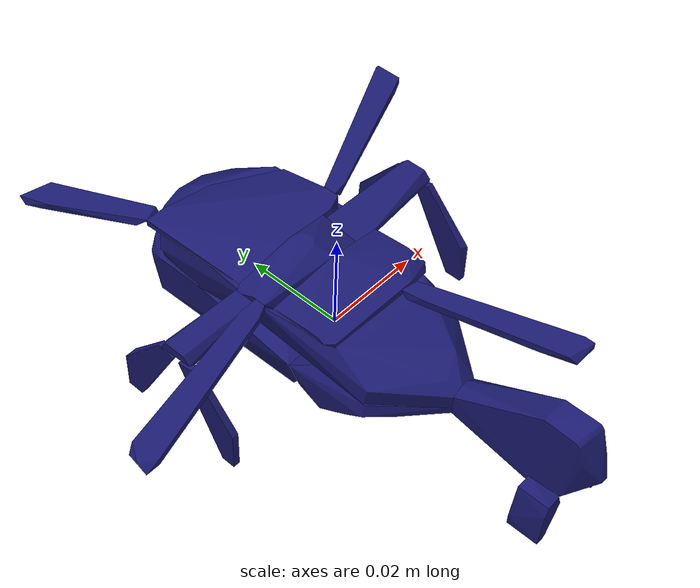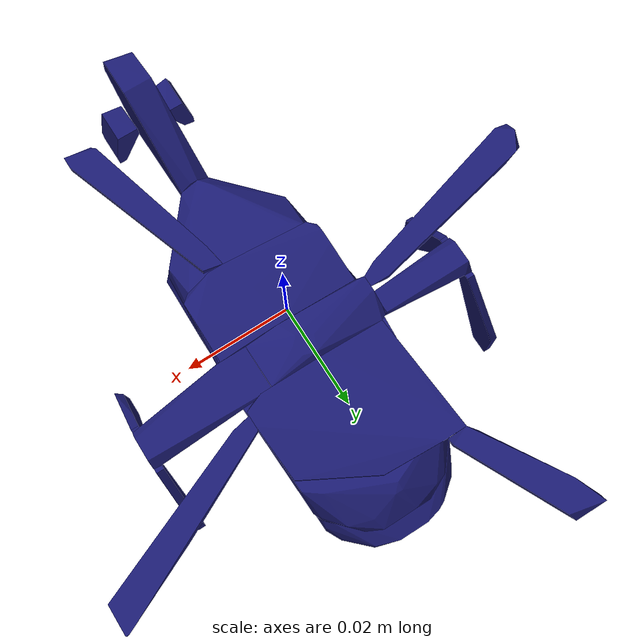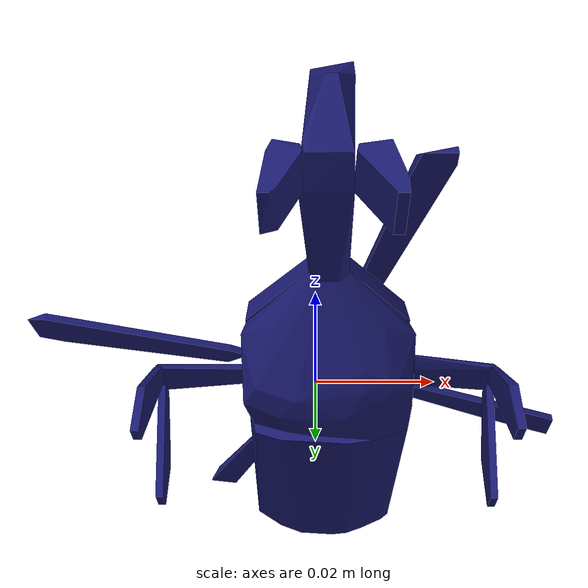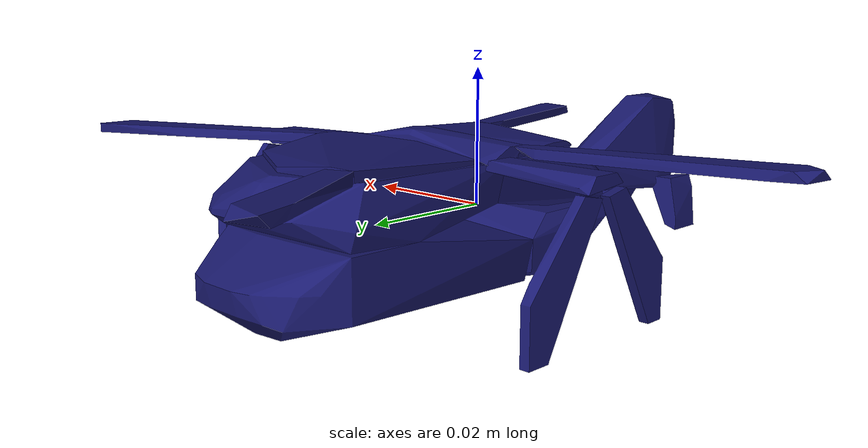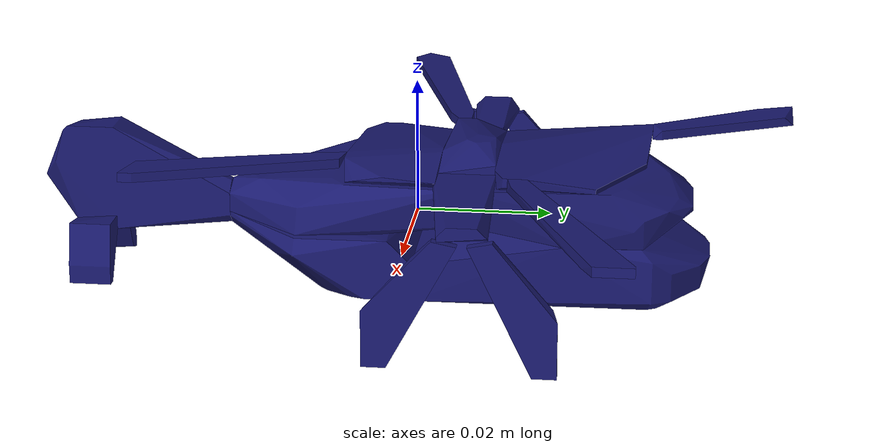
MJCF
<mujoco model="shapenetsem30">
  <asset>
    <mesh file="meshes/shapenetsem30/shapenetsem30_0.stl" name="shapenetsem30_0" scale="0.6 0.6 0.6"/>
    <mesh file="meshes/shapenetsem30/shapenetsem30_1.stl" name="shapenetsem30_1" scale="0.6 0.6 0.6"/>
    <mesh file="meshes/shapenetsem30/shapenetsem30_2.stl" name="shapenetsem30_2" scale="0.6 0.6 0.6"/>
    <mesh file="meshes/shapenetsem30/shapenetsem30_3.stl" name="shapenetsem30_3" scale="0.6 0.6 0.6"/>
    <mesh file="meshes/shapenetsem30/shapenetsem30_4.stl" name="shapenetsem30_4" scale="0.6 0.6 0.6"/>
    <mesh file="meshes/shapenetsem30/shapenetsem30_5.stl" name="shapenetsem30_5" scale="0.6 0.6 0.6"/>
    <mesh file="meshes/shapenetsem30/shapenetsem30_6.stl" name="shapenetsem30_6" scale="0.6 0.6 0.6"/>
    <mesh file="meshes/shapenetsem30/shapenetsem30_7.stl" name="shapenetsem30_7" scale="0.6 0.6 0.6"/>
    <mesh file="meshes/shapenetsem30/shapenetsem30_8.stl" name="shapenetsem30_8" scale="0.6 0.6 0.6"/>
    <mesh file="meshes/shapenetsem30/shapenetsem30_9.stl" name="shapenetsem30_9" scale="0.6 0.6 0.6"/>
    <mesh file="meshes/shapenetsem30/shapenetsem30_10.stl" name="shapenetsem30_10" scale="0.6 0.6 0.6"/>
    <mesh file="meshes/shapenetsem30/shapenetsem30_11.stl" name="shapenetsem30_11" scale="0.6 0.6 0.6"/>
    <mesh file="meshes/shapenetsem30/shapenetsem30_12.stl" name="shapenetsem30_12" scale="0.6 0.6 0.6"/>
    <mesh file="meshes/shapenetsem30/shapenetsem30_13.stl" name="shapenetsem30_13" scale="0.6 0.6 0.6"/>
    <mesh file="meshes/shapenetsem30/shapenetsem30_14.stl" name="shapenetsem30_14" scale="0.6 0.6 0.6"/>
    <mesh file="meshes/shapenetsem30/shapenetsem30_15.stl" name="shapenetsem30_15" scale="0.6 0.6 0.6"/>
    <mesh file="meshes/shapenetsem30/shapenetsem30_16.stl" name="shapenetsem30_16" scale="0.6 0.6 0.6"/>
    <mesh file="meshes/shapenetsem30/shapenetsem30_17.stl" name="shapenetsem30_17" scale="0.6 0.6 0.6"/>
    <mesh file="meshes/shapenetsem30/shapenetsem30_18.stl" name="shapenetsem30_18" scale="0.6 0.6 0.6"/>
    <mesh file="meshes/shapenetsem30/shapenetsem30_19.stl" name="shapenetsem30_19" scale="0.6 0.6 0.6"/>
    <texture file="../textures/texture31-1.png" type="2d" name="tex-sem30"/>
    <material name="sem30" reflectance="0.7" texrepeat="90 90" texture="tex-sem30" texuniform="true"/>
  </asset>
  <worldbody>
    <body>
      <body name="collision">
        <geom pos="0 0 0" mesh="shapenetsem30_0" type="mesh" solimp="0.998 0.998 0.001" solref="0.001 1" density="100" friction="0.95 0.3 0.1" rgba="0.1 0.1 0.44 1" group="1" condim="4"/>
        <geom pos="0 0 0" mesh="shapenetsem30_1" type="mesh" solimp="0.998 0.998 0.001" solref="0.001 1" density="100" friction="0.95 0.3 0.1" rgba="0.1 0.1 0.44 1" group="1" condim="4"/>
        <geom pos="0 0 0" mesh="shapenetsem30_2" type="mesh" solimp="0.998 0.998 0.001" solref="0.001 1" density="100" friction="0.95 0.3 0.1" rgba="0.1 0.1 0.44 1" group="1" condim="4"/>
        <geom pos="0 0 0" mesh="shapenetsem30_3" type="mesh" solimp="0.998 0.998 0.001" solref="0.001 1" density="100" friction="0.95 0.3 0.1" rgba="0.1 0.1 0.44 1" group="1" condim="4"/>
        <geom pos="0 0 0" mesh="shapenetsem30_4" type="mesh" solimp="0.998 0.998 0.001" solref="0.001 1" density="100" friction="0.95 0.3 0.1" rgba="0.1 0.1 0.44 1" group="1" condim="4"/>
        <geom pos="0 0 0" mesh="shapenetsem30_5" type="mesh" solimp="0.998 0.998 0.001" solref="0.001 1" density="100" friction="0.95 0.3 0.1" rgba="0.1 0.1 0.44 1" group="1" condim="4"/>
        <geom pos="0 0 0" mesh="shapenetsem30_6" type="mesh" solimp="0.998 0.998 0.001" solref="0.001 1" density="100" friction="0.95 0.3 0.1" rgba="0.1 0.1 0.44 1" group="1" condim="4"/>
        <geom pos="0 0 0" mesh="shapenetsem30_7" type="mesh" solimp="0.998 0.998 0.001" solref="0.001 1" density="100" friction="0.95 0.3 0.1" rgba="0.1 0.1 0.44 1" group="1" condim="4"/>
        <geom pos="0 0 0" mesh="shapenetsem30_8" type="mesh" solimp="0.998 0.998 0.001" solref="0.001 1" density="100" friction="0.95 0.3 0.1" rgba="0.1 0.1 0.44 1" group="1" condim="4"/>
        <geom pos="0 0 0" mesh="shapenetsem30_9" type="mesh" solimp="0.998 0.998 0.001" solref="0.001 1" density="100" friction="0.95 0.3 0.1" rgba="0.1 0.1 0.44 1" group="1" condim="4"/>
        <geom pos="0 0 0" mesh="shapenetsem30_10" type="mesh" solimp="0.998 0.998 0.001" solref="0.001 1" density="100" friction="0.95 0.3 0.1" rgba="0.1 0.1 0.44 1" group="1" condim="4"/>
        <geom pos="0 0 0" mesh="shapenetsem30_11" type="mesh" solimp="0.998 0.998 0.001" solref="0.001 1" density="100" friction="0.95 0.3 0.1" rgba="0.1 0.1 0.44 1" group="1" condim="4"/>
        <geom pos="0 0 0" mesh="shapenetsem30_12" type="mesh" solimp="0.998 0.998 0.001" solref="0.001 1" density="100" friction="0.95 0.3 0.1" rgba="0.1 0.1 0.44 1" group="1" condim="4"/>
        <geom pos="0 0 0" mesh="shapenetsem30_13" type="mesh" solimp="0.998 0.998 0.001" solref="0.001 1" density="100" friction="0.95 0.3 0.1" rgba="0.1 0.1 0.44 1" group="1" condim="4"/>
        <geom pos="0 0 0" mesh="shapenetsem30_14" type="mesh" solimp="0.998 0.998 0.001" solref="0.001 1" density="100" friction="0.95 0.3 0.1" rgba="0.1 0.1 0.44 1" group="1" condim="4"/>
        <geom pos="0 0 0" mesh="shapenetsem30_15" type="mesh" solimp="0.998 0.998 0.001" solref="0.001 1" density="100" friction="0.95 0.3 0.1" rgba="0.1 0.1 0.44 1" group="1" condim="4"/>
        <geom pos="0 0 0" mesh="shapenetsem30_16" type="mesh" solimp="0.998 0.998 0.001" solref="0.001 1" density="100" friction="0.95 0.3 0.1" rgba="0.1 0.1 0.44 1" group="1" condim="4"/>
        <geom pos="0 0 0" mesh="shapenetsem30_17" type="mesh" solimp="0.998 0.998 0.001" solref="0.001 1" density="100" friction="0.95 0.3 0.1" rgba="0.1 0.1 0.44 1" group="1" condim="4"/>
        <geom pos="0 0 0" mesh="shapenetsem30_18" type="mesh" solimp="0.998 0.998 0.001" solref="0.001 1" density="100" friction="0.95 0.3 0.1" rgba="0.1 0.1 0.44 1" group="1" condim="4"/>
        <geom pos="0 0 0" mesh="shapenetsem30_19" type="mesh" solimp="0.998 0.998 0.001" solref="0.001 1" density="100" friction="0.95 0.3 0.1" rgba="0.1 0.1 0.44 1" group="1" condim="4"/>
      </body>
      <body name="visual">
        <geom pos="0 0 0" mesh="shapenetsem30_0" type="mesh" material="sem30" conaffinity="0" contype="0" group="0" mass="0.0001"/>
        <geom pos="0 0 0" mesh="shapenetsem30_1" type="mesh" material="sem30" conaffinity="0" contype="0" group="0" mass="0.0001"/>
        <geom pos="0 0 0" mesh="shapenetsem30_2" type="mesh" material="sem30" conaffinity="0" contype="0" group="0" mass="0.0001"/>
        <geom pos="0 0 0" mesh="shapenetsem30_3" type="mesh" material="sem30" conaffinity="0" contype="0" group="0" mass="0.0001"/>
        <geom pos="0 0 0" mesh="shapenetsem30_4" type="mesh" material="sem30" conaffinity="0" contype="0" group="0" mass="0.0001"/>
        <geom pos="0 0 0" mesh="shapenetsem30_5" type="mesh" material="sem30" conaffinity="0" contype="0" group="0" mass="0.0001"/>
        <geom pos="0 0 0" mesh="shapenetsem30_6" type="mesh" material="sem30" conaffinity="0" contype="0" group="0" mass="0.0001"/>
        <geom pos="0 0 0" mesh="shapenetsem30_7" type="mesh" material="sem30" conaffinity="0" contype="0" group="0" mass="0.0001"/>
        <geom pos="0 0 0" mesh="shapenetsem30_8" type="mesh" material="sem30" conaffinity="0" contype="0" group="0" mass="0.0001"/>
        <geom pos="0 0 0" mesh="shapenetsem30_9" type="mesh" material="sem30" conaffinity="0" contype="0" group="0" mass="0.0001"/>
        <geom pos="0 0 0" mesh="shapenetsem30_10" type="mesh" material="sem30" conaffinity="0" contype="0" group="0" mass="0.0001"/>
        <geom pos="0 0 0" mesh="shapenetsem30_11" type="mesh" material="sem30" conaffinity="0" contype="0" group="0" mass="0.0001"/>
        <geom pos="0 0 0" mesh="shapenetsem30_12" type="mesh" material="sem30" conaffinity="0" contype="0" group="0" mass="0.0001"/>
        <geom pos="0 0 0" mesh="shapenetsem30_13" type="mesh" material="sem30" conaffinity="0" contype="0" group="0" mass="0.0001"/>
        <geom pos="0 0 0" mesh="shapenetsem30_14" type="mesh" material="sem30" conaffinity="0" contype="0" group="0" mass="0.0001"/>
        <geom pos="0 0 0" mesh="shapenetsem30_15" type="mesh" material="sem30" conaffinity="0" contype="0" group="0" mass="0.0001"/>
        <geom pos="0 0 0" mesh="shapenetsem30_16" type="mesh" material="sem30" conaffinity="0" contype="0" group="0" mass="0.0001"/>
        <geom pos="0 0 0" mesh="shapenetsem30_17" type="mesh" material="sem30" conaffinity="0" contype="0" group="0" mass="0.0001"/>
        <geom pos="0 0 0" mesh="shapenetsem30_18" type="mesh" material="sem30" conaffinity="0" contype="0" group="0" mass="0.0001"/>
        <geom pos="0 0 0" mesh="shapenetsem30_19" type="mesh" material="sem30" conaffinity="0" contype="0" group="0" mass="0.0001"/>
      </body>
      <site rgba="0 0 0 0" size="0.005" pos="0 0 -0.06" name="bottom_site"/>
      <site rgba="0 0 0 0" size="0.005" pos="0 0 0.04" name="top_site"/>
      <site rgba="0 0 0 0" size="0.005" pos="0.025 0.025 0" name="horizontal_radius_site"/>
    </body>
  </worldbody>
</mujoco>
